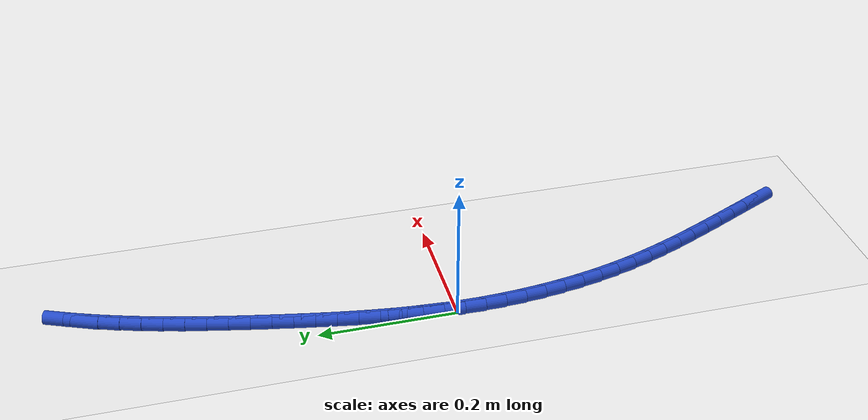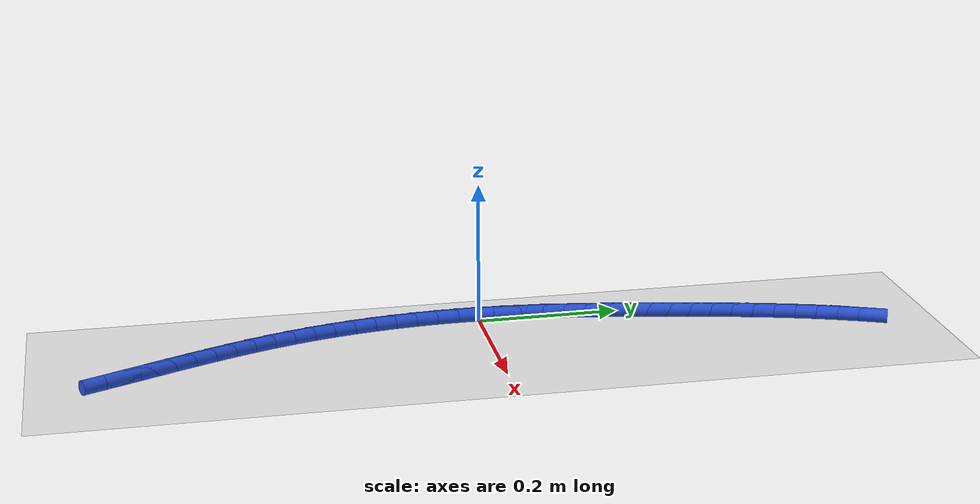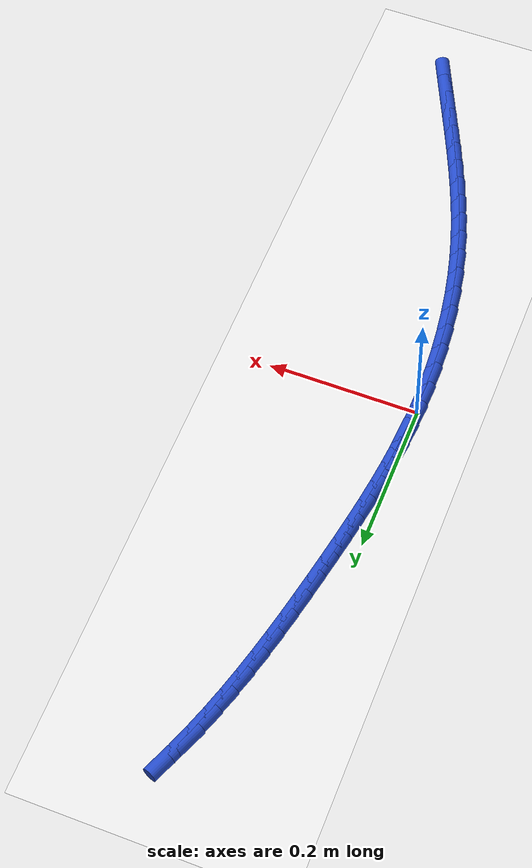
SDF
<sdf version="1.6">
 <world name="default">
  <model name="ground_plane">
   <static>1</static>
   <link name="link">
    <collision name="collision">
     <geometry><plane><normal>0 0 1</normal><size>100 100</size></plane></geometry>
     <surface><friction><ode><mu>100</mu><mu2>50</mu2></ode></friction></surface>
    </collision>
    <visual name="visual">
     <cast_shadows>0</cast_shadows>
     <geometry><plane><normal>0 0 1</normal><size>100 100</size></plane></geometry>
     <material>
      <script><uri>file://media/materials/scripts/gazebo.material</uri><name>Gazebo/WhiteGlow</name></script>
     </material>
    </visual>
   </link>
  </model>
  <model name="line">
   <link name="link_0">
    <pose>-5.204170427930421e-18 1.3877787807814457e-17 0.01 0 1.57 1.5329400787040186</pose>
    <collision name="collision">
     <geometry><cylinder><radius>0.01</radius><length>0.08</length></cylinder></geometry>
    </collision>
    <visual name="visual">
     <material>
      <script><name>Gazebo/Blue</name><uri>file://media/materials/scripts/gazebo.material</uri></script>
     </material>
     <geometry><cylinder><radius>0.01</radius><length>0.08</length></cylinder></geometry>
    </visual>
   </link>
   <link name="link_1">
    <pose>0.0011373522767443292 0.030029624452386987 0.01 0 1.57 1.5011955594375406</pose>
    <collision name="collision">
     <geometry><cylinder><radius>0.01</radius><length>0.08</length></cylinder></geometry>
    </collision>
    <visual name="visual">
     <material>
      <script><name>Gazebo/Blue</name><uri>file://media/materials/scripts/gazebo.material</uri></script>
     </material>
     <geometry><cylinder><radius>0.01</radius><length>0.08</length></cylinder></geometry>
    </visual>
   </link>
   <link name="link_2">
    <pose>0.0032239314309353037 0.05996045466123885 0.01 0 1.57 1.4728184669057203</pose>
    <collision name="collision">
     <geometry><cylinder><radius>0.01</radius><length>0.08</length></cylinder></geometry>
    </collision>
    <visual name="visual">
     <material>
      <script><name>Gazebo/Blue</name><uri>file://media/materials/scripts/gazebo.material</uri></script>
     </material>
     <geometry><cylinder><radius>0.01</radius><length>0.08</length></cylinder></geometry>
    </visual>
   </link>
   <link name="link_3">
    <pose>0.006156769730512951 0.08979829292575754 0.01 0 1.57 1.4478548080208276</pose>
    <collision name="collision">
     <geometry><cylinder><radius>0.01</radius><length>0.08</length></cylinder></geometry>
    </collision>
    <visual name="visual">
     <material>
      <script><name>Gazebo/Blue</name><uri>file://media/materials/scripts/gazebo.material</uri></script>
     </material>
     <geometry><cylinder><radius>0.01</radius><length>0.08</length></cylinder></geometry>
    </visual>
   </link>
   <link name="link_4">
    <pose>0.009832899443417293 0.11954894154514495 0.01 0 1.57 1.426324234562757</pose>
    <collision name="collision">
     <geometry><cylinder><radius>0.01</radius><length>0.08</length></cylinder></geometry>
    </collision>
    <visual name="visual">
     <material>
      <script><name>Gazebo/Blue</name><uri>file://media/materials/scripts/gazebo.material</uri></script>
     </material>
     <geometry><cylinder><radius>0.01</radius><length>0.08</length></cylinder></geometry>
    </visual>
   </link>
   <link name="link_5">
    <pose>0.014149352837588365 0.14921820281860312 0.01 0 1.57 1.408228670041951</pose>
    <collision name="collision">
     <geometry><cylinder><radius>0.01</radius><length>0.08</length></cylinder></geometry>
    </collision>
    <visual name="visual">
     <material>
      <script><name>Gazebo/Blue</name><uri>file://media/materials/scripts/gazebo.material</uri></script>
     </material>
     <geometry><cylinder><radius>0.01</radius><length>0.08</length></cylinder></geometry>
    </visual>
   </link>
   <link name="link_6">
    <pose>0.0190031621809662 0.17881187904533402 0.01 0 1.57 1.3935599136054329</pose>
    <collision name="collision">
     <geometry><cylinder><radius>0.01</radius><length>0.08</length></cylinder></geometry>
    </collision>
    <visual name="visual">
     <material>
      <script><name>Gazebo/Blue</name><uri>file://media/materials/scripts/gazebo.material</uri></script>
     </material>
     <geometry><cylinder><radius>0.01</radius><length>0.08</length></cylinder></geometry>
    </visual>
   </link>
   <link name="link_7">
    <pose>0.02429135974149082 0.2083357725245395 0.01 0 1.57 1.382306038179606</pose>
    <collision name="collision">
     <geometry><cylinder><radius>0.01</radius><length>0.08</length></cylinder></geometry>
    </collision>
    <visual name="visual">
     <material>
      <script><name>Gazebo/Blue</name><uri>file://media/materials/scripts/gazebo.material</uri></script>
     </material>
     <geometry><cylinder><radius>0.01</radius><length>0.08</length></cylinder></geometry>
    </visual>
   </link>
   <link name="link_8">
    <pose>0.029910977787102222 0.23779568555542138 0.01 0 1.57 1.3744318169296947</pose>
    <collision name="collision">
     <geometry><cylinder><radius>0.01</radius><length>0.08</length></cylinder></geometry>
    </collision>
    <visual name="visual">
     <material>
      <script><name>Gazebo/Blue</name><uri>file://media/materials/scripts/gazebo.material</uri></script>
     </material>
     <geometry><cylinder><radius>0.01</radius><length>0.08</length></cylinder></geometry>
    </visual>
   </link>
   <link name="link_9">
    <pose>0.03575978455366879 0.2671973226435751 0.01 0 1.57 1.3677673976509888</pose>
    <collision name="collision">
     <geometry><cylinder><radius>0.01</radius><length>0.08</length></cylinder></geometry>
    </collision>
    <visual name="visual">
     <material>
      <script><name>Gazebo/Blue</name><uri>file://media/materials/scripts/gazebo.material</uri></script>
     </material>
     <geometry><cylinder><radius>0.01</radius><length>0.08</length></cylinder></geometry>
    </visual>
   </link>
   <link name="link_10">
    <pose>0.04179997846411434 0.29653782696991726 0.01 0 1.57 1.3584889240832074</pose>
    <collision name="collision">
     <geometry><cylinder><radius>0.01</radius><length>0.08</length></cylinder></geometry>
    </collision>
    <visual name="visual">
     <material>
      <script><name>Gazebo/Blue</name><uri>file://media/materials/scripts/gazebo.material</uri></script>
     </material>
     <geometry><cylinder><radius>0.01</radius><length>0.08</length></cylinder></geometry>
    </visual>
   </link>
   <link name="link_11">
    <pose>0.0481074465343271 0.32579923505494623 0.01 0 1.57 1.3462011860797136</pose>
    <collision name="collision">
     <geometry><cylinder><radius>0.01</radius><length>0.08</length></cylinder></geometry>
    </collision>
    <visual name="visual">
     <material>
      <script><name>Gazebo/Blue</name><uri>file://media/materials/scripts/gazebo.material</uri></script>
     </material>
     <geometry><cylinder><radius>0.01</radius><length>0.08</length></cylinder></geometry>
    </visual>
   </link>
   <link name="link_12">
    <pose>0.05476967076064663 0.3549620427066964 0.01 0 1.57 1.3309022796629506</pose>
    <collision name="collision">
     <geometry><cylinder><radius>0.01</radius><length>0.08</length></cylinder></geometry>
    </collision>
    <visual name="visual">
     <material>
      <script><name>Gazebo/Blue</name><uri>file://media/materials/scripts/gazebo.material</uri></script>
     </material>
     <geometry><cylinder><radius>0.01</radius><length>0.08</length></cylinder></geometry>
    </visual>
   </link>
   <link name="link_13">
    <pose>0.06187413313941233 0.38400674573320115 0.01 0 1.57 1.3125975831280772</pose>
    <collision name="collision">
     <geometry><cylinder><radius>0.01</radius><length>0.08</length></cylinder></geometry>
    </collision>
    <visual name="visual">
     <material>
      <script><name>Gazebo/Blue</name><uri>file://media/materials/scripts/gazebo.material</uri></script>
     </material>
     <geometry><cylinder><radius>0.01</radius><length>0.08</length></cylinder></geometry>
    </visual>
   </link>
   <link name="link_14">
    <pose>0.06950831566696376 0.4129138399424949 0.01 0 1.57 1.2913038914908734</pose>
    <collision name="collision">
     <geometry><cylinder><radius>0.01</radius><length>0.08</length></cylinder></geometry>
    </collision>
    <visual name="visual">
     <material>
      <script><name>Gazebo/Blue</name><uri>file://media/materials/scripts/gazebo.material</uri></script>
     </material>
     <geometry><cylinder><radius>0.01</radius><length>0.08</length></cylinder></geometry>
    </visual>
   </link>
   <link name="link_15">
    <pose>0.07775970033964033 0.44166382114261127 0.01 0 1.57 1.2670542468388943</pose>
    <collision name="collision">
     <geometry><cylinder><radius>0.01</radius><length>0.08</length></cylinder></geometry>
    </collision>
    <visual name="visual">
     <material>
      <script><name>Gazebo/Blue</name><uri>file://media/materials/scripts/gazebo.material</uri></script>
     </material>
     <geometry><cylinder><radius>0.01</radius><length>0.08</length></cylinder></geometry>
    </visual>
   </link>
   <link name="link_16">
    <pose>0.08671576915378161 0.4702371851415844 0.01 0 1.57 1.2399032932530805</pose>
    <collision name="collision">
     <geometry><cylinder><radius>0.01</radius><length>0.08</length></cylinder></geometry>
    </collision>
    <visual name="visual">
     <material>
      <script><name>Gazebo/Blue</name><uri>file://media/materials/scripts/gazebo.material</uri></script>
     </material>
     <geometry><cylinder><radius>0.01</radius><length>0.08</length></cylinder></geometry>
    </visual>
   </link>
   <link name="link_17">
    <pose>0.09646400410572702 0.49861442774744824 0.01 0 1.57 1.2099328810886505</pose>
    <collision name="collision">
     <geometry><cylinder><radius>0.01</radius><length>0.08</length></cylinder></geometry>
    </collision>
    <visual name="visual">
     <material>
      <script><name>Gazebo/Blue</name><uri>file://media/materials/scripts/gazebo.material</uri></script>
     </material>
     <geometry><cylinder><radius>0.01</radius><length>0.08</length></cylinder></geometry>
    </visual>
   </link>
   <link name="link_18">
    <pose>0.10709188719181606 0.5267760447682367 0.01 0 1.57 1.1772575251762634</pose>
    <collision name="collision">
     <geometry><cylinder><radius>0.01</radius><length>0.08</length></cylinder></geometry>
    </collision>
    <visual name="visual">
     <material>
      <script><name>Gazebo/Blue</name><uri>file://media/materials/scripts/gazebo.material</uri></script>
     </material>
     <geometry><cylinder><radius>0.01</radius><length>0.08</length></cylinder></geometry>
    </visual>
   </link>
   <link name="link_222">
    <pose>0.14148263344566997 -0.5160993412659417 0.01 0 1.57 -1.1338692119933627</pose>
    <collision name="collision">
     <geometry><cylinder><radius>0.01</radius><length>0.08</length></cylinder></geometry>
    </collision>
    <visual name="visual">
     <material>
      <script><name>Gazebo/Blue</name><uri>file://media/materials/scripts/gazebo.material</uri></script>
     </material>
     <geometry><cylinder><radius>0.01</radius><length>0.08</length></cylinder></geometry>
    </visual>
   </link>
   <link name="link_223">
    <pose>0.12833557562471723 -0.48794911189380324 0.01 0 1.57 -1.132723539115557</pose>
    <collision name="collision">
     <geometry><cylinder><radius>0.01</radius><length>0.08</length></cylinder></geometry>
    </collision>
    <visual name="visual">
     <material>
      <script><name>Gazebo/Blue</name><uri>file://media/materials/scripts/gazebo.material</uri></script>
     </material>
     <geometry><cylinder><radius>0.01</radius><length>0.08</length></cylinder></geometry>
    </visual>
   </link>
   <link name="link_224">
    <pose>0.11530899439456897 -0.4601399873027918 0.01 0 1.57 -1.1359048274857986</pose>
    <collision name="collision">
     <geometry><cylinder><radius>0.01</radius><length>0.08</length></cylinder></geometry>
    </collision>
    <visual name="visual">
     <material>
      <script><name>Gazebo/Blue</name><uri>file://media/materials/scripts/gazebo.material</uri></script>
     </material>
     <geometry><cylinder><radius>0.01</radius><length>0.08</length></cylinder></geometry>
    </visual>
   </link>
   <link name="link_225">
    <pose>0.10250622360034245 -0.43258075678069924 0.01 0 1.57 -1.143828769403191</pose>
    <collision name="collision">
     <geometry><cylinder><radius>0.01</radius><length>0.08</length></cylinder></geometry>
    </collision>
    <visual name="visual">
     <material>
      <script><name>Gazebo/Blue</name><uri>file://media/materials/scripts/gazebo.material</uri></script>
     </material>
     <geometry><cylinder><radius>0.01</radius><length>0.08</length></cylinder></geometry>
    </visual>
   </link>
   <link name="link_226">
    <pose>0.09003657328986217 -0.40517227200275946 0.01 0 1.57 -1.1565899422528942</pose>
    <collision name="collision">
     <geometry><cylinder><radius>0.01</radius><length>0.08</length></cylinder></geometry>
    </collision>
    <visual name="visual">
     <material>
      <script><name>Gazebo/Blue</name><uri>file://media/materials/scripts/gazebo.material</uri></script>
     </material>
     <geometry><cylinder><radius>0.01</radius><length>0.08</length></cylinder></geometry>
    </visual>
   </link>
   <link name="link_227">
    <pose>0.07800935351095266 -0.3778153846442063 0.01 0 1.57 -1.174235388072041</pose>
    <collision name="collision">
     <geometry><cylinder><radius>0.01</radius><length>0.08</length></cylinder></geometry>
    </collision>
    <visual name="visual">
     <material>
      <script><name>Gazebo/Blue</name><uri>file://media/materials/scripts/gazebo.material</uri></script>
     </material>
     <geometry><cylinder><radius>0.01</radius><length>0.08</length></cylinder></geometry>
    </visual>
   </link>
   <link name="link_228">
    <pose>0.06653387431143838 -0.35041094638027354 0.01 0 1.57 -1.196753046751964</pose>
    <collision name="collision">
     <geometry><cylinder><radius>0.01</radius><length>0.08</length></cylinder></geometry>
    </collision>
    <visual name="visual">
     <material>
      <script><name>Gazebo/Blue</name><uri>file://media/materials/scripts/gazebo.material</uri></script>
     </material>
     <geometry><cylinder><radius>0.01</radius><length>0.08</length></cylinder></geometry>
    </visual>
   </link>
   <link name="link_229">
    <pose>0.05571944573914383 -0.322859808886195 0.01 0 1.57 -1.2240580053001406</pose>
    <collision name="collision">
     <geometry><cylinder><radius>0.01</radius><length>0.08</length></cylinder></geometry>
    </collision>
    <visual name="visual">
     <material>
      <script><name>Gazebo/Blue</name><uri>file://media/materials/scripts/gazebo.material</uri></script>
     </material>
     <geometry><cylinder><radius>0.01</radius><length>0.08</length></cylinder></geometry>
    </visual>
   </link>
   <link name="link_230">
    <pose>0.0456753778418933 -0.29506282383720395 0.01 0 1.57 -1.2559778875439924</pose>
    <collision name="collision">
     <geometry><cylinder><radius>0.01</radius><length>0.08</length></cylinder></geometry>
    </collision>
    <visual name="visual">
     <material>
      <script><name>Gazebo/Blue</name><uri>file://media/materials/scripts/gazebo.material</uri></script>
     </material>
     <geometry><cylinder><radius>0.01</radius><length>0.08</length></cylinder></geometry>
    </visual>
   </link>
   <link name="link_231">
    <pose>0.03651098066751178 -0.26692084290853557 0.01 0 1.57 -1.2919383514256948</pose>
    <collision name="collision">
     <geometry><cylinder><radius>0.01</radius><length>0.08</length></cylinder></geometry>
    </collision>
    <visual name="visual">
     <material>
      <script><name>Gazebo/Blue</name><uri>file://media/materials/scripts/gazebo.material</uri></script>
     </material>
     <geometry><cylinder><radius>0.01</radius><length>0.08</length></cylinder></geometry>
    </visual>
   </link>
   <link name="link_232">
    <pose>0.02832913309693794 -0.23834478515950974 0.01 0 1.57 -1.3287617464448611</pose>
    <collision name="collision">
     <geometry><cylinder><radius>0.01</radius><length>0.08</length></cylinder></geometry>
    </collision>
    <visual name="visual">
     <material>
      <script><name>Gazebo/Blue</name><uri>file://media/materials/scripts/gazebo.material</uri></script>
     </material>
     <geometry><cylinder><radius>0.01</radius><length>0.08</length></cylinder></geometry>
    </visual>
   </link>
   <link name="link_233">
    <pose>0.021169656525381327 -0.20934428018513676 0.01 0 1.57 -1.364862937454551</pose>
    <collision name="collision">
     <geometry><cylinder><radius>0.01</radius><length>0.08</length></cylinder></geometry>
    </collision>
    <visual name="visual">
     <material>
      <script><name>Gazebo/Blue</name><uri>file://media/materials/scripts/gazebo.material</uri></script>
     </material>
     <geometry><cylinder><radius>0.01</radius><length>0.08</length></cylinder></geometry>
    </visual>
   </link>
   <link name="link_234">
    <pose>0.015036636083797818 -0.17998489932544265 0.01 0 1.57 -1.4003733926655728</pose>
    <collision name="collision">
     <geometry><cylinder><radius>0.01</radius><length>0.08</length></cylinder></geometry>
    </collision>
    <visual name="visual">
     <material>
      <script><name>Gazebo/Blue</name><uri>file://media/materials/scripts/gazebo.material</uri></script>
     </material>
     <geometry><cylinder><radius>0.01</radius><length>0.08</length></cylinder></geometry>
    </visual>
   </link>
   <link name="link_235">
    <pose>0.00993374869783506 -0.15033285292729298 0.01 0 1.57 -1.435441571641324</pose>
    <collision name="collision">
     <geometry><cylinder><radius>0.01</radius><length>0.08</length></cylinder></geometry>
    </collision>
    <visual name="visual">
     <material>
      <script><name>Gazebo/Blue</name><uri>file://media/materials/scripts/gazebo.material</uri></script>
     </material>
     <geometry><cylinder><radius>0.01</radius><length>0.08</length></cylinder></geometry>
    </visual>
   </link>
   <link name="link_236">
    <pose>0.005864671293140693 -0.12045435133755311 0.01 0 1.57 -1.4702142232141966</pose>
    <collision name="collision">
     <geometry><cylinder><radius>0.01</radius><length>0.08</length></cylinder></geometry>
    </collision>
    <visual name="visual">
     <material>
      <script><name>Gazebo/Blue</name><uri>file://media/materials/scripts/gazebo.material</uri></script>
     </material>
     <geometry><cylinder><radius>0.01</radius><length>0.08</length></cylinder></geometry>
    </visual>
   </link>
   <link name="link_237">
    <pose>0.0028330807953623575 -0.09041560490308853 0.01 0 1.57 -1.504836955513781</pose>
    <collision name="collision">
     <geometry><cylinder><radius>0.01</radius><length>0.08</length></cylinder></geometry>
    </collision>
    <visual name="visual">
     <material>
      <script><name>Gazebo/Blue</name><uri>file://media/materials/scripts/gazebo.material</uri></script>
     </material>
     <geometry><cylinder><radius>0.01</radius><length>0.08</length></cylinder></geometry>
    </visual>
   </link>
   <link name="link_238">
    <pose>0.0008426541301476613 -0.06028282397076387 0.01 0 1.57 -1.5394549040162013</pose>
    <collision name="collision">
     <geometry><cylinder><radius>0.01</radius><length>0.08</length></cylinder></geometry>
    </collision>
    <visual name="visual">
     <material>
      <script><name>Gazebo/Blue</name><uri>file://media/materials/scripts/gazebo.material</uri></script>
     </material>
     <geometry><cylinder><radius>0.01</radius><length>0.08</length></cylinder></geometry>
    </visual>
   </link>
   <link name="link_239">
    <pose>-0.0001029317768556472 -0.03012221888744623 0.01 0 1.57 1.5673792021599533</pose>
    <collision name="collision">
     <geometry><cylinder><radius>0.01</radius><length>0.08</length></cylinder></geometry>
    </collision>
    <visual name="visual">
     <material>
      <script><name>Gazebo/Blue</name><uri>file://media/materials/scripts/gazebo.material</uri></script>
     </material>
     <geometry><cylinder><radius>0.01</radius><length>0.08</length></cylinder></geometry>
    </visual>
   </link>
   <link name="link_240">
    <pose>6.071532165918825e-18 -1.8735013540549517e-16 0.01 0 1.57 1.5323336965561736</pose>
    <collision name="collision">
     <geometry><cylinder><radius>0.01</radius><length>0.08</length></cylinder></geometry>
    </collision>
    <visual name="visual">
     <material>
      <script><name>Gazebo/Blue</name><uri>file://media/materials/scripts/gazebo.material</uri></script>
     </material>
     <geometry><cylinder><radius>0.01</radius><length>0.08</length></cylinder></geometry>
    </visual>
   </link>
   <link name="link_241">
    <pose>0.0011551263863622645 0.030017622344708787 0.01 0 1.57 1.4968532004933428</pose>
    <collision name="collision">
     <geometry><cylinder><radius>0.01</radius><length>0.08</length></cylinder></geometry>
    </collision>
    <visual name="visual">
     <material>
      <script><name>Gazebo/Blue</name><uri>file://media/materials/scripts/gazebo.material</uri></script>
     </material>
     <geometry><cylinder><radius>0.01</radius><length>0.08</length></cylinder></geometry>
    </visual>
   </link>
   <link name="link_242">
    <pose>0.003366124307878771 0.05986443779981526 0.01 0 1.57 1.514626360570569</pose>
    <collision name="collision">
     <geometry><cylinder><radius>0.01</radius><length>0.08</length></cylinder></geometry>
    </collision>
    <visual name="visual">
     <material>
      <script><name>Gazebo/Blue</name><uri>file://media/materials/scripts/gazebo.material</uri></script>
     </material>
     <geometry><cylinder><radius>0.01</radius><length>0.08</length></cylinder></geometry>
    </visual>
   </link>
  </model>
 </world>
</sdf>
